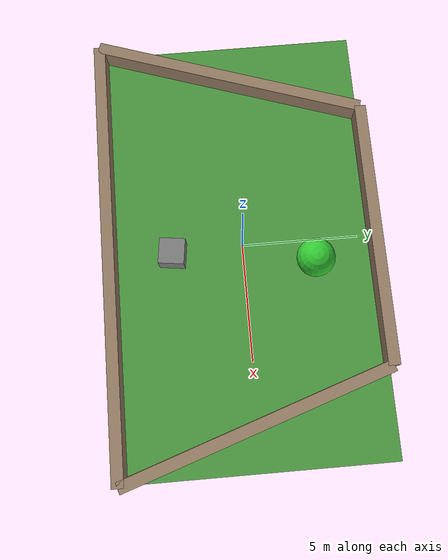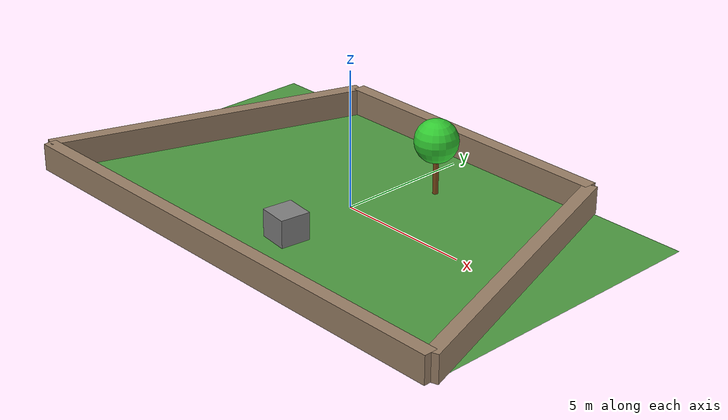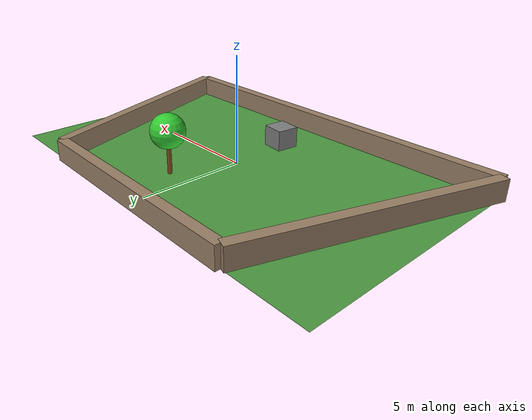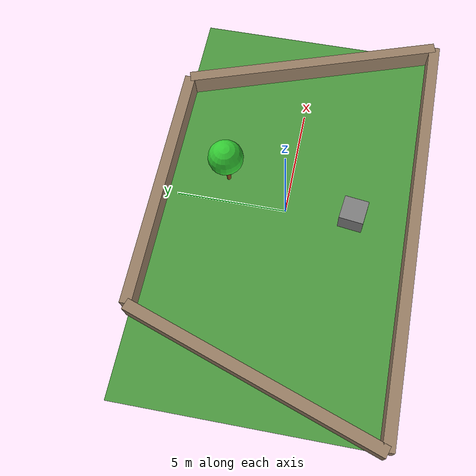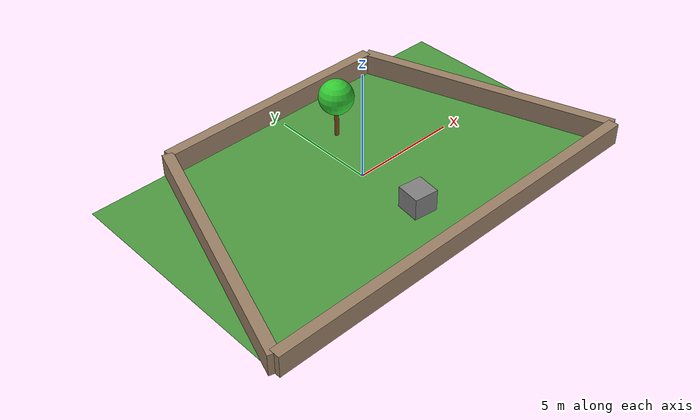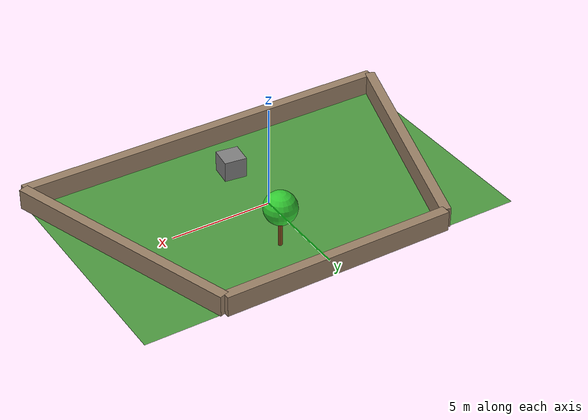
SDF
<?xml version="1.0" ?>
<sdf version="1.6">
  <world name="eval_lvl2_ep000">
    <light name="sun" type="directional">
      <cast_shadows>true</cast_shadows>
      <diffuse>0.8 0.8 0.8 1</diffuse>
      <specular>0.2 0.2 0.2 1</specular>
      <pose>0 0 10 0 0 0</pose>
      <direction>-0.5 0.5 -1</direction>
    </light>
    <include>
      <uri>model://ground_plane</uri>
    </include>
    <physics type="ode">
      <max_step_size>0.001</max_step_size>
      <real_time_factor>1</real_time_factor>
      <real_time_update_rate>1000</real_time_update_rate>
    </physics>
    <gravity>0 0 -9.8</gravity>
    <atmosphere type="adiabatic"/>
    <scene>
      <ambient>0.4 0.4 0.4 1</ambient>
      <background>0.7 0.7 0.7 1</background>
      <shadows>1</shadows>
    </scene>
    <model name="eval_lvl2_ep000_field">
      <static>true</static>
      <link name="link">
        <collision name="collision">
          <geometry>
            <plane>
              <normal>0 0 1</normal>
              <size>18.972759425868084 11.38365565552085</size>
            </plane>
          </geometry>
        </collision>
        <visual name="visual">
          <geometry>
            <plane>
              <normal>0 0 1</normal>
              <size>18.972759425868084 11.38365565552085</size>
            </plane>
          </geometry>
          <material>
            <script>
              <uri>file://media/materials/scripts/gazebo.material</uri>
              <name>Gazebo/Grass</name>
            </script>
          </material>
        </visual>
      </link>
      <pose>0.0 0.0 0.01 0 0 0</pose>
    </model>
    <model name="eval_lvl2_ep000_boundary_0">
      <static>true</static>
      <pose>0.0 -5.691827827760425 0.5 0 0 0.0</pose>
      <link name="link">
        <collision name="collision">
          <geometry>
            <box>
              <size>18.972759425868084 0.5 1.0</size>
            </box>
          </geometry>
        </collision>
        <visual name="visual">
          <geometry>
            <box>
              <size>18.972759425868084 0.5 1.0</size>
            </box>
          </geometry>
          <material>
            <ambient>0.4 0.3 0.2 1</ambient>
            <diffuse>0.6 0.5 0.4 1</diffuse>
          </material>
        </visual>
      </link>
    </model>
    <model name="eval_lvl2_ep000_boundary_1">
      <static>true</static>
      <pose>7.589103770347233 0.0 0.5 0 0 1.892546881191539</pose>
      <link name="link">
        <collision name="collision">
          <geometry>
            <box>
              <size>11.999426656834338 0.5 1.0</size>
            </box>
          </geometry>
        </collision>
        <visual name="visual">
          <geometry>
            <box>
              <size>11.999426656834338 0.5 1.0</size>
            </box>
          </geometry>
          <material>
            <ambient>0.4 0.3 0.2 1</ambient>
            <diffuse>0.6 0.5 0.4 1</diffuse>
          </material>
        </visual>
      </link>
    </model>
    <model name="eval_lvl2_ep000_boundary_2">
      <static>true</static>
      <pose>0.0 5.691827827760425 0.5 0 0 3.141592653589793</pose>
      <link name="link">
        <collision name="collision">
          <geometry>
            <box>
              <size>11.38365565552085 0.5 1.0</size>
            </box>
          </geometry>
        </collision>
        <visual name="visual">
          <geometry>
            <box>
              <size>11.38365565552085 0.5 1.0</size>
            </box>
          </geometry>
          <material>
            <ambient>0.4 0.3 0.2 1</ambient>
            <diffuse>0.6 0.5 0.4 1</diffuse>
          </material>
        </visual>
      </link>
    </model>
    <model name="eval_lvl2_ep000_boundary_3">
      <static>true</static>
      <pose>-7.589103770347233 0.0 0.5 0 0 -1.892546881191539</pose>
      <link name="link">
        <collision name="collision">
          <geometry>
            <box>
              <size>11.999426656834338 0.5 1.0</size>
            </box>
          </geometry>
        </collision>
        <visual name="visual">
          <geometry>
            <box>
              <size>11.999426656834338 0.5 1.0</size>
            </box>
          </geometry>
          <material>
            <ambient>0.4 0.3 0.2 1</ambient>
            <diffuse>0.6 0.5 0.4 1</diffuse>
          </material>
        </visual>
      </link>
    </model>
    <model name="obstacle_0">
      <static>true</static>
      <pose>0.18231306775451017 -3.0156032595311286 0.5 0 0 4.587684844338088</pose>
      <link name="link">
        <collision name="collision">
          <geometry>
            <box>
              <size>1.0922773844771432 1.0922773844771432 1.0</size>
            </box>
          </geometry>
        </collision>
        <visual name="visual">
          <geometry>
            <box>
              <size>1.0922773844771432 1.0922773844771432 1.0</size>
            </box>
          </geometry>
          <material>
            <ambient>0.3 0.3 0.3 1</ambient>
            <diffuse>0.5 0.5 0.5 1</diffuse>
          </material>
        </visual>
      </link>
    </model>
    <model name="obstacle_1">
      <static>true</static>
      <pose>1.1939200494146576 2.876645521156875 1.0 0 0 4.976761224997656</pose>
      <link name="link">
        <collision name="trunk_collision">
          <geometry>
            <cylinder>
              <radius>0.09837319670123626</radius>
              <length>2.0</length>
            </cylinder>
          </geometry>
        </collision>
        <visual name="trunk_visual">
          <geometry>
            <cylinder>
              <radius>0.09837319670123626</radius>
              <length>2.0</length>
            </cylinder>
          </geometry>
          <material>
            <ambient>0.4 0.2 0.0 1</ambient>
            <diffuse>0.5 0.3 0.1 1</diffuse>
          </material>
        </visual>
        <collision name="crown_collision">
          <pose>0 0 0.9837319670123625 0 0 0</pose>
          <geometry>
            <sphere>
              <radius>0.7869855736098901</radius>
            </sphere>
          </geometry>
        </collision>
        <visual name="crown_visual">
          <pose>0 0 0.9837319670123625 0 0 0</pose>
          <geometry>
            <sphere>
              <radius>0.7869855736098901</radius>
            </sphere>
          </geometry>
          <material>
            <ambient>0.1 0.5 0.1 1</ambient>
            <diffuse>0.2 0.8 0.2 1</diffuse>
          </material>
        </visual>
      </link>
    </model>
    <plugin name="gazebo_ros_state" filename="libgazebo_ros_state.so">
      <ros>
        <namespace>/</namespace>
      </ros>
    </plugin>
  </world>
</sdf>
